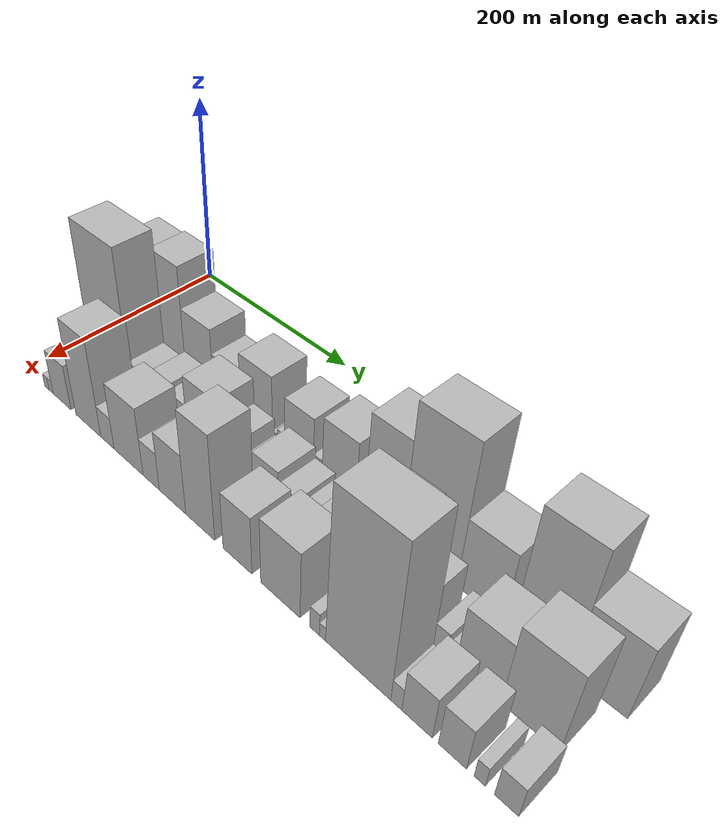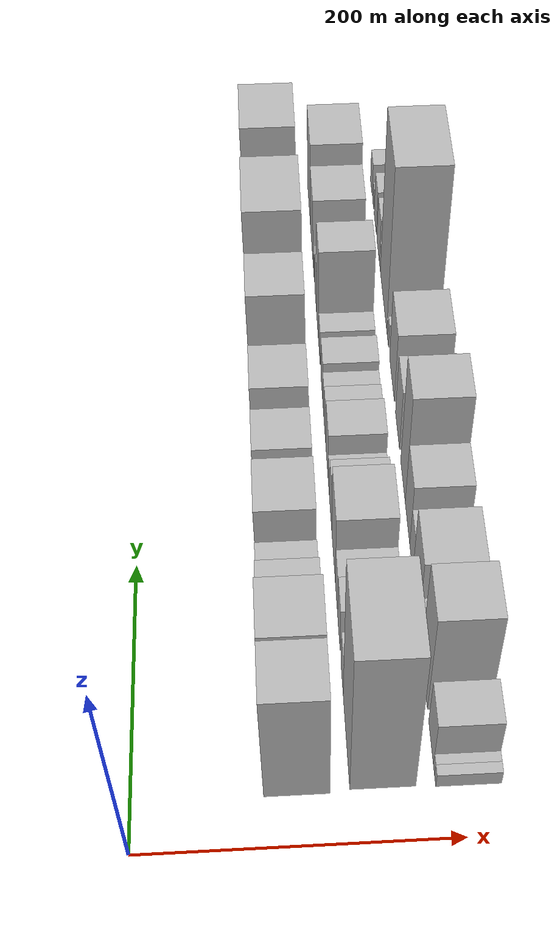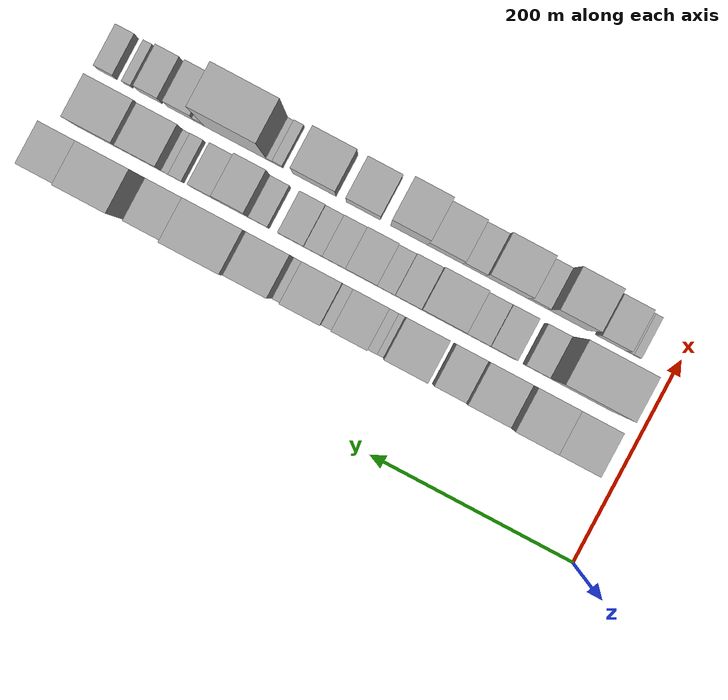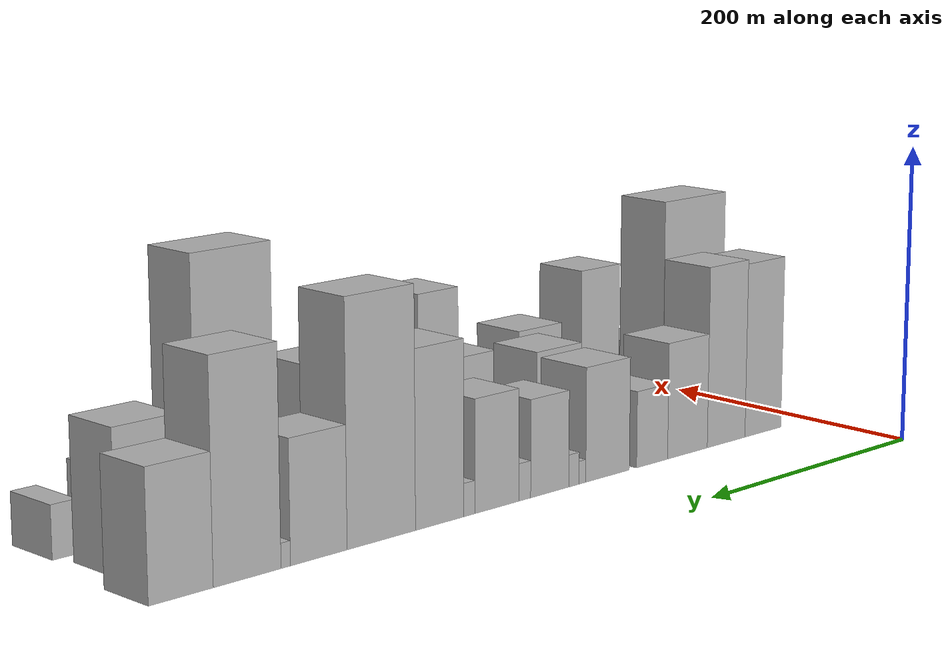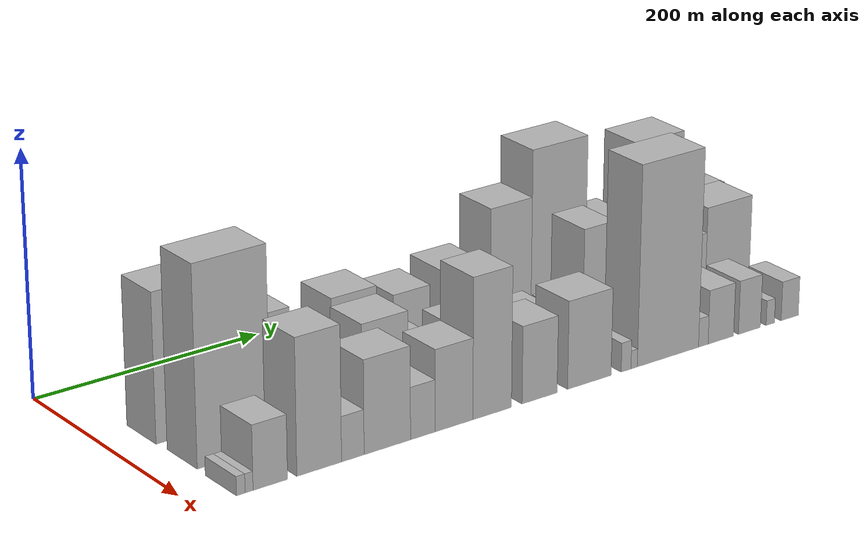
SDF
<sdf version="1.6">
 <world name="default">
  <model name="building_19">
   <static>1</static>
   <pose>100.0000 51.3344 0 0.000000 0.000000 0.000000</pose>
   <link name="link">
    <pose>0 0 60.00 0 0 0</pose>
    <collision name="collision"><geometry><box><size>40.0000 38.7485 120.0000</size></box></geometry></collision>
    <visual name="visual">
     <cast_shadows>0</cast_shadows>
     <geometry><box><size>40.0000 38.7485 120.0000</size></box></geometry>
     <material>
      <script>
       <uri>model://HANNAS_wall/materials/scripts</uri>
       <uri>model://HANNAS_wall/materials/textures</uri>
       <name>vrc/HANNAS_wall</name>
      </script>
     </material>
    </visual>
   </link>
  </model>
  <model name="building_20">
   <static>1</static>
   <pose>100.0000 90.4751 0 0.000000 0.000000 0.000000</pose>
   <link name="link">
    <pose>0 0 61.50 0 0 0</pose>
    <collision name="collision"><geometry><box><size>40.0000 39.5329 123.0000</size></box></geometry></collision>
    <visual name="visual">
     <cast_shadows>0</cast_shadows>
     <geometry><box><size>40.0000 39.5329 123.0000</size></box></geometry>
     <material>
      <script>
       <uri>model://HANNAS_wall/materials/scripts</uri>
       <uri>model://HANNAS_wall/materials/textures</uri>
       <name>vrc/HANNAS_wall</name>
      </script>
     </material>
    </visual>
   </link>
  </model>
  <model name="building_21">
   <static>1</static>
   <pose>100.0000 130.3828 0 0.000000 0.000000 0.000000</pose>
   <link name="link">
    <pose>0 0 39.00 0 0 0</pose>
    <collision name="collision"><geometry><box><size>40.0000 40.2824 78.0000</size></box></geometry></collision>
    <visual name="visual">
     <cast_shadows>0</cast_shadows>
     <geometry><box><size>40.0000 40.2824 78.0000</size></box></geometry>
     <material>
      <script>
       <uri>model://HANNAS_wall/materials/scripts</uri>
       <uri>model://HANNAS_wall/materials/textures</uri>
       <name>vrc/HANNAS_wall</name>
      </script>
     </material>
    </visual>
   </link>
  </model>
  <model name="building_22">
   <static>1</static>
   <pose>100.0000 165.8007 0 0.000000 0.000000 0.000000</pose>
   <link name="link">
    <pose>0 0 25.50 0 0 0</pose>
    <collision name="collision"><geometry><box><size>40.0000 30.5533 51.0000</size></box></geometry></collision>
    <visual name="visual">
     <cast_shadows>0</cast_shadows>
     <geometry><box><size>40.0000 30.5533 51.0000</size></box></geometry>
     <material>
      <script>
       <uri>model://HANNAS_wall/materials/scripts</uri>
       <uri>model://HANNAS_wall/materials/textures</uri>
       <name>vrc/HANNAS_wall</name>
      </script>
     </material>
    </visual>
   </link>
  </model>
  <model name="building_23">
   <static>1</static>
   <pose>100.0000 208.7580 0 0.000000 0.000000 0.000000</pose>
   <link name="link">
    <pose>0 0 37.50 0 0 0</pose>
    <collision name="collision"><geometry><box><size>40.0000 41.3613 75.0000</size></box></geometry></collision>
    <visual name="visual">
     <cast_shadows>0</cast_shadows>
     <geometry><box><size>40.0000 41.3613 75.0000</size></box></geometry>
     <material>
      <script>
       <uri>model://HANNAS_wall/materials/scripts</uri>
       <uri>model://HANNAS_wall/materials/textures</uri>
       <name>vrc/HANNAS_wall</name>
      </script>
     </material>
    </visual>
   </link>
  </model>
  <model name="building_24">
   <static>1</static>
   <pose>100.0000 232.5239 0 0.000000 0.000000 0.000000</pose>
   <link name="link">
    <pose>0 0 7.50 0 0 0</pose>
    <collision name="collision"><geometry><box><size>40.0000 6.1706 15.0000</size></box></geometry></collision>
    <visual name="visual">
     <cast_shadows>0</cast_shadows>
     <geometry><box><size>40.0000 6.1706 15.0000</size></box></geometry>
     <material>
      <script>
       <uri>model://HANNAS_wall/materials/scripts</uri>
       <uri>model://HANNAS_wall/materials/textures</uri>
       <name>vrc/HANNAS_wall</name>
      </script>
     </material>
    </visual>
   </link>
  </model>
  <model name="building_25">
   <static>1</static>
   <pose>100.0000 240.3950 0 0.000000 0.000000 0.000000</pose>
   <link name="link">
    <pose>0 0 10.50 0 0 0</pose>
    <collision name="collision"><geometry><box><size>40.0000 9.5717 21.0000</size></box></geometry></collision>
    <visual name="visual">
     <cast_shadows>0</cast_shadows>
     <geometry><box><size>40.0000 9.5717 21.0000</size></box></geometry>
     <material>
      <script>
       <uri>model://HANNAS_wall/materials/scripts</uri>
       <uri>model://HANNAS_wall/materials/textures</uri>
       <name>vrc/HANNAS_wall</name>
      </script>
     </material>
    </visual>
   </link>
  </model>
  <model name="building_26">
   <static>1</static>
   <pose>100.0000 262.4223 0 0.000000 0.000000 0.000000</pose>
   <link name="link">
    <pose>0 0 31.50 0 0 0</pose>
    <collision name="collision"><geometry><box><size>40.0000 34.4828 63.0000</size></box></geometry></collision>
    <visual name="visual">
     <cast_shadows>0</cast_shadows>
     <geometry><box><size>40.0000 34.4828 63.0000</size></box></geometry>
     <material>
      <script>
       <uri>model://HANNAS_wall/materials/scripts</uri>
       <uri>model://HANNAS_wall/materials/textures</uri>
       <name>vrc/HANNAS_wall</name>
      </script>
     </material>
    </visual>
   </link>
  </model>
  <model name="building_27">
   <static>1</static>
   <pose>100.0000 284.8369 0 0.000000 0.000000 0.000000</pose>
   <link name="link">
    <pose>0 0 12.00 0 0 0</pose>
    <collision name="collision"><geometry><box><size>40.0000 10.3464 24.0000</size></box></geometry></collision>
    <visual name="visual">
     <cast_shadows>0</cast_shadows>
     <geometry><box><size>40.0000 10.3464 24.0000</size></box></geometry>
     <material>
      <script>
       <uri>model://HANNAS_wall/materials/scripts</uri>
       <uri>model://HANNAS_wall/materials/textures</uri>
       <name>vrc/HANNAS_wall</name>
      </script>
     </material>
    </visual>
   </link>
  </model>
  <model name="building_28">
   <static>1</static>
   <pose>100.0000 309.1547 0 0.000000 0.000000 0.000000</pose>
   <link name="link">
    <pose>0 0 36.00 0 0 0</pose>
    <collision name="collision"><geometry><box><size>40.0000 38.2892 72.0000</size></box></geometry></collision>
    <visual name="visual">
     <cast_shadows>0</cast_shadows>
     <geometry><box><size>40.0000 38.2892 72.0000</size></box></geometry>
     <material>
      <script>
       <uri>model://HANNAS_wall/materials/scripts</uri>
       <uri>model://HANNAS_wall/materials/textures</uri>
       <name>vrc/HANNAS_wall</name>
      </script>
     </material>
    </visual>
   </link>
  </model>
  <model name="building_29">
   <static>1</static>
   <pose>100.0000 332.9960 0 0.000000 0.000000 0.000000</pose>
   <link name="link">
    <pose>0 0 10.50 0 0 0</pose>
    <collision name="collision"><geometry><box><size>40.0000 9.3933 21.0000</size></box></geometry></collision>
    <visual name="visual">
     <cast_shadows>0</cast_shadows>
     <geometry><box><size>40.0000 9.3933 21.0000</size></box></geometry>
     <material>
      <script>
       <uri>model://HANNAS_wall/materials/scripts</uri>
       <uri>model://HANNAS_wall/materials/textures</uri>
       <name>vrc/HANNAS_wall</name>
      </script>
     </material>
    </visual>
   </link>
  </model>
  <model name="building_30">
   <static>1</static>
   <pose>100.0000 357.7204 0 0.000000 0.000000 0.000000</pose>
   <link name="link">
    <pose>0 0 55.50 0 0 0</pose>
    <collision name="collision"><geometry><box><size>40.0000 40.0556 111.0000</size></box></geometry></collision>
    <visual name="visual">
     <cast_shadows>0</cast_shadows>
     <geometry><box><size>40.0000 40.0556 111.0000</size></box></geometry>
     <material>
      <script>
       <uri>model://HANNAS_wall/materials/scripts</uri>
       <uri>model://HANNAS_wall/materials/textures</uri>
       <name>vrc/HANNAS_wall</name>
      </script>
     </material>
    </visual>
   </link>
  </model>
  <model name="building_31">
   <static>1</static>
   <pose>100.0000 404.8930 0 0.000000 0.000000 0.000000</pose>
   <link name="link">
    <pose>0 0 75.00 0 0 0</pose>
    <collision name="collision"><geometry><box><size>40.0000 54.2895 150.0000</size></box></geometry></collision>
    <visual name="visual">
     <cast_shadows>0</cast_shadows>
     <geometry><box><size>40.0000 54.2895 150.0000</size></box></geometry>
     <material>
      <script>
       <uri>model://HANNAS_wall/materials/scripts</uri>
       <uri>model://HANNAS_wall/materials/textures</uri>
       <name>vrc/HANNAS_wall</name>
      </script>
     </material>
    </visual>
   </link>
  </model>
  <model name="building_32">
   <static>1</static>
   <pose>100.0000 453.5138 0 0.000000 0.000000 0.000000</pose>
   <link name="link">
    <pose>0 0 37.50 0 0 0</pose>
    <collision name="collision"><geometry><box><size>40.0000 42.9522 75.0000</size></box></geometry></collision>
    <visual name="visual">
     <cast_shadows>0</cast_shadows>
     <geometry><box><size>40.0000 42.9522 75.0000</size></box></geometry>
     <material>
      <script>
       <uri>model://HANNAS_wall/materials/scripts</uri>
       <uri>model://HANNAS_wall/materials/textures</uri>
       <name>vrc/HANNAS_wall</name>
      </script>
     </material>
    </visual>
   </link>
  </model>
  <model name="building_33">
   <static>1</static>
   <pose>100.0000 478.4617 0 0.000000 0.000000 0.000000</pose>
   <link name="link">
    <pose>0 0 7.50 0 0 0</pose>
    <collision name="collision"><geometry><box><size>40.0000 6.9436 15.0000</size></box></geometry></collision>
    <visual name="visual">
     <cast_shadows>0</cast_shadows>
     <geometry><box><size>40.0000 6.9436 15.0000</size></box></geometry>
     <material>
      <script>
       <uri>model://HANNAS_wall/materials/scripts</uri>
       <uri>model://HANNAS_wall/materials/textures</uri>
       <name>vrc/HANNAS_wall</name>
      </script>
     </material>
    </visual>
   </link>
  </model>
  <model name="building_34">
   <static>1</static>
   <pose>100.0000 506.3013 0 0.000000 0.000000 0.000000</pose>
   <link name="link">
    <pose>0 0 66.00 0 0 0</pose>
    <collision name="collision"><geometry><box><size>40.0000 48.7356 132.0000</size></box></geometry></collision>
    <visual name="visual">
     <cast_shadows>0</cast_shadows>
     <geometry><box><size>40.0000 48.7356 132.0000</size></box></geometry>
     <material>
      <script>
       <uri>model://HANNAS_wall/materials/scripts</uri>
       <uri>model://HANNAS_wall/materials/textures</uri>
       <name>vrc/HANNAS_wall</name>
      </script>
     </material>
    </visual>
   </link>
  </model>
  <model name="building_35">
   <static>1</static>
   <pose>100.0000 552.9983 0 0.000000 0.000000 0.000000</pose>
   <link name="link">
    <pose>0 0 39.00 0 0 0</pose>
    <collision name="collision"><geometry><box><size>40.0000 44.6583 78.0000</size></box></geometry></collision>
    <visual name="visual">
     <cast_shadows>0</cast_shadows>
     <geometry><box><size>40.0000 44.6583 78.0000</size></box></geometry>
     <material>
      <script>
       <uri>model://HANNAS_wall/materials/scripts</uri>
       <uri>model://HANNAS_wall/materials/textures</uri>
       <name>vrc/HANNAS_wall</name>
      </script>
     </material>
    </visual>
   </link>
  </model>
  <model name="building_55">
   <static>1</static>
   <pose>152.0000 65.2520 0 0.000000 0.000000 0.000000</pose>
   <link name="link">
    <pose>0 0 79.50 0 0 0</pose>
    <collision name="collision"><geometry><box><size>40.0000 62.8517 159.0000</size></box></geometry></collision>
    <visual name="visual">
     <cast_shadows>0</cast_shadows>
     <geometry><box><size>40.0000 62.8517 159.0000</size></box></geometry>
     <material>
      <script>
       <uri>model://HANNAS_wall/materials/scripts</uri>
       <uri>model://HANNAS_wall/materials/textures</uri>
       <name>vrc/HANNAS_wall</name>
      </script>
     </material>
    </visual>
   </link>
  </model>
  <model name="building_56">
   <static>1</static>
   <pose>152.0000 108.2803 0 0.000000 0.000000 0.000000</pose>
   <link name="link">
    <pose>0 0 19.50 0 0 0</pose>
    <collision name="collision"><geometry><box><size>40.0000 23.2048 39.0000</size></box></geometry></collision>
    <visual name="visual">
     <cast_shadows>0</cast_shadows>
     <geometry><box><size>40.0000 23.2048 39.0000</size></box></geometry>
     <material>
      <script>
       <uri>model://HANNAS_wall/materials/scripts</uri>
       <uri>model://HANNAS_wall/materials/textures</uri>
       <name>vrc/HANNAS_wall</name>
      </script>
     </material>
    </visual>
   </link>
  </model>
  <model name="building_57">
   <static>1</static>
   <pose>152.0000 141.6102 0 0.000000 0.000000 0.000000</pose>
   <link name="link">
    <pose>0 0 24.00 0 0 0</pose>
    <collision name="collision"><geometry><box><size>40.0000 25.4550 48.0000</size></box></geometry></collision>
    <visual name="visual">
     <cast_shadows>0</cast_shadows>
     <geometry><box><size>40.0000 25.4550 48.0000</size></box></geometry>
     <material>
      <script>
       <uri>model://HANNAS_wall/materials/scripts</uri>
       <uri>model://HANNAS_wall/materials/textures</uri>
       <name>vrc/HANNAS_wall</name>
      </script>
     </material>
    </visual>
   </link>
  </model>
  <model name="building_58">
   <static>1</static>
   <pose>152.0000 166.4611 0 0.000000 0.000000 0.000000</pose>
   <link name="link">
    <pose>0 0 21.00 0 0 0</pose>
    <collision name="collision"><geometry><box><size>40.0000 24.2469 42.0000</size></box></geometry></collision>
    <visual name="visual">
     <cast_shadows>0</cast_shadows>
     <geometry><box><size>40.0000 24.2469 42.0000</size></box></geometry>
     <material>
      <script>
       <uri>model://HANNAS_wall/materials/scripts</uri>
       <uri>model://HANNAS_wall/materials/textures</uri>
       <name>vrc/HANNAS_wall</name>
      </script>
     </material>
    </visual>
   </link>
  </model>
  <model name="building_59">
   <static>1</static>
   <pose>152.0000 199.6101 0 0.000000 0.000000 0.000000</pose>
   <link name="link">
    <pose>0 0 37.50 0 0 0</pose>
    <collision name="collision"><geometry><box><size>40.0000 42.0511 75.0000</size></box></geometry></collision>
    <visual name="visual">
     <cast_shadows>0</cast_shadows>
     <geometry><box><size>40.0000 42.0511 75.0000</size></box></geometry>
     <material>
      <script>
       <uri>model://HANNAS_wall/materials/scripts</uri>
       <uri>model://HANNAS_wall/materials/textures</uri>
       <name>vrc/HANNAS_wall</name>
      </script>
     </material>
    </visual>
   </link>
  </model>
  <model name="building_60">
   <static>1</static>
   <pose>152.0000 233.3329 0 0.000000 0.000000 0.000000</pose>
   <link name="link">
    <pose>0 0 24.00 0 0 0</pose>
    <collision name="collision"><geometry><box><size>40.0000 25.3945 48.0000</size></box></geometry></collision>
    <visual name="visual">
     <cast_shadows>0</cast_shadows>
     <geometry><box><size>40.0000 25.3945 48.0000</size></box></geometry>
     <material>
      <script>
       <uri>model://HANNAS_wall/materials/scripts</uri>
       <uri>model://HANNAS_wall/materials/textures</uri>
       <name>vrc/HANNAS_wall</name>
      </script>
     </material>
    </visual>
   </link>
  </model>
  <model name="building_61">
   <static>1</static>
   <pose>152.0000 254.6546 0 0.000000 0.000000 0.000000</pose>
   <link name="link">
    <pose>0 0 15.00 0 0 0</pose>
    <collision name="collision"><geometry><box><size>40.0000 17.2487 30.0000</size></box></geometry></collision>
    <visual name="visual">
     <cast_shadows>0</cast_shadows>
     <geometry><box><size>40.0000 17.2487 30.0000</size></box></geometry>
     <material>
      <script>
       <uri>model://HANNAS_wall/materials/scripts</uri>
       <uri>model://HANNAS_wall/materials/textures</uri>
       <name>vrc/HANNAS_wall</name>
      </script>
     </material>
    </visual>
   </link>
  </model>
  <model name="building_62">
   <static>1</static>
   <pose>152.0000 278.5262 0 0.000000 0.000000 0.000000</pose>
   <link name="link">
    <pose>0 0 25.50 0 0 0</pose>
    <collision name="collision"><geometry><box><size>40.0000 30.4945 51.0000</size></box></geometry></collision>
    <visual name="visual">
     <cast_shadows>0</cast_shadows>
     <geometry><box><size>40.0000 30.4945 51.0000</size></box></geometry>
     <material>
      <script>
       <uri>model://HANNAS_wall/materials/scripts</uri>
       <uri>model://HANNAS_wall/materials/textures</uri>
       <name>vrc/HANNAS_wall</name>
      </script>
     </material>
    </visual>
   </link>
  </model>
  <model name="building_63">
   <static>1</static>
   <pose>152.0000 305.0138 0 0.000000 0.000000 0.000000</pose>
   <link name="link">
    <pose>0 0 19.50 0 0 0</pose>
    <collision name="collision"><geometry><box><size>40.0000 22.4807 39.0000</size></box></geometry></collision>
    <visual name="visual">
     <cast_shadows>0</cast_shadows>
     <geometry><box><size>40.0000 22.4807 39.0000</size></box></geometry>
     <material>
      <script>
       <uri>model://HANNAS_wall/materials/scripts</uri>
       <uri>model://HANNAS_wall/materials/textures</uri>
       <name>vrc/HANNAS_wall</name>
      </script>
     </material>
    </visual>
   </link>
  </model>
  <model name="building_64">
   <static>1</static>
   <pose>152.0000 325.2323 0 0.000000 0.000000 0.000000</pose>
   <link name="link">
    <pose>0 0 16.50 0 0 0</pose>
    <collision name="collision"><geometry><box><size>40.0000 17.9563 33.0000</size></box></geometry></collision>
    <visual name="visual">
     <cast_shadows>0</cast_shadows>
     <geometry><box><size>40.0000 17.9563 33.0000</size></box></geometry>
     <material>
      <script>
       <uri>model://HANNAS_wall/materials/scripts</uri>
       <uri>model://HANNAS_wall/materials/textures</uri>
       <name>vrc/HANNAS_wall</name>
      </script>
     </material>
    </visual>
   </link>
  </model>
  <model name="building_65">
   <static>1</static>
   <pose>152.0000 346.6891 0 0.000000 0.000000 0.000000</pose>
   <link name="link">
    <pose>0 0 21.00 0 0 0</pose>
    <collision name="collision"><geometry><box><size>40.0000 24.9572 42.0000</size></box></geometry></collision>
    <visual name="visual">
     <cast_shadows>0</cast_shadows>
     <geometry><box><size>40.0000 24.9572 42.0000</size></box></geometry>
     <material>
      <script>
       <uri>model://HANNAS_wall/materials/scripts</uri>
       <uri>model://HANNAS_wall/materials/textures</uri>
       <name>vrc/HANNAS_wall</name>
      </script>
     </material>
    </visual>
   </link>
  </model>
  <model name="building_66">
   <static>1</static>
   <pose>152.0000 378.4294 0 0.000000 0.000000 0.000000</pose>
   <link name="link">
    <pose>0 0 18.00 0 0 0</pose>
    <collision name="collision"><geometry><box><size>40.0000 18.5234 36.0000</size></box></geometry></collision>
    <visual name="visual">
     <cast_shadows>0</cast_shadows>
     <geometry><box><size>40.0000 18.5234 36.0000</size></box></geometry>
     <material>
      <script>
       <uri>model://HANNAS_wall/materials/scripts</uri>
       <uri>model://HANNAS_wall/materials/textures</uri>
       <name>vrc/HANNAS_wall</name>
      </script>
     </material>
    </visual>
   </link>
  </model>
  <model name="building_67">
   <static>1</static>
   <pose>152.0000 402.7591 0 0.000000 0.000000 0.000000</pose>
   <link name="link">
    <pose>0 0 49.50 0 0 0</pose>
    <collision name="collision"><geometry><box><size>40.0000 30.1361 99.0000</size></box></geometry></collision>
    <visual name="visual">
     <cast_shadows>0</cast_shadows>
     <geometry><box><size>40.0000 30.1361 99.0000</size></box></geometry>
     <material>
      <script>
       <uri>model://HANNAS_wall/materials/scripts</uri>
       <uri>model://HANNAS_wall/materials/textures</uri>
       <name>vrc/HANNAS_wall</name>
      </script>
     </material>
    </visual>
   </link>
  </model>
  <model name="building_68">
   <static>1</static>
   <pose>152.0000 431.4727 0 0.000000 0.000000 0.000000</pose>
   <link name="link">
    <pose>0 0 24.00 0 0 0</pose>
    <collision name="collision"><geometry><box><size>40.0000 27.2912 48.0000</size></box></geometry></collision>
    <visual name="visual">
     <cast_shadows>0</cast_shadows>
     <geometry><box><size>40.0000 27.2912 48.0000</size></box></geometry>
     <material>
      <script>
       <uri>model://HANNAS_wall/materials/scripts</uri>
       <uri>model://HANNAS_wall/materials/textures</uri>
       <name>vrc/HANNAS_wall</name>
      </script>
     </material>
    </visual>
   </link>
  </model>
  <model name="building_69">
   <static>1</static>
   <pose>152.0000 459.5278 0 0.000000 0.000000 0.000000</pose>
   <link name="link">
    <pose>0 0 13.50 0 0 0</pose>
    <collision name="collision"><geometry><box><size>40.0000 12.8190 27.0000</size></box></geometry></collision>
    <visual name="visual">
     <cast_shadows>0</cast_shadows>
     <geometry><box><size>40.0000 12.8190 27.0000</size></box></geometry>
     <material>
      <script>
       <uri>model://HANNAS_wall/materials/scripts</uri>
       <uri>model://HANNAS_wall/materials/textures</uri>
       <name>vrc/HANNAS_wall</name>
      </script>
     </material>
    </visual>
   </link>
  </model>
  <model name="building_70">
   <static>1</static>
   <pose>152.0000 469.8214 0 0.000000 0.000000 0.000000</pose>
   <link name="link">
    <pose>0 0 9.00 0 0 0</pose>
    <collision name="collision"><geometry><box><size>40.0000 7.7683 18.0000</size></box></geometry></collision>
    <visual name="visual">
     <cast_shadows>0</cast_shadows>
     <geometry><box><size>40.0000 7.7683 18.0000</size></box></geometry>
     <material>
      <script>
       <uri>model://HANNAS_wall/materials/scripts</uri>
       <uri>model://HANNAS_wall/materials/textures</uri>
       <name>vrc/HANNAS_wall</name>
      </script>
     </material>
    </visual>
   </link>
  </model>
  <model name="building_71">
   <static>1</static>
   <pose>152.0000 492.9680 0 0.000000 0.000000 0.000000</pose>
   <link name="link">
    <pose>0 0 33.00 0 0 0</pose>
    <collision name="collision"><geometry><box><size>40.0000 38.5249 66.0000</size></box></geometry></collision>
    <visual name="visual">
     <cast_shadows>0</cast_shadows>
     <geometry><box><size>40.0000 38.5249 66.0000</size></box></geometry>
     <material>
      <script>
       <uri>model://HANNAS_wall/materials/scripts</uri>
       <uri>model://HANNAS_wall/materials/textures</uri>
       <name>vrc/HANNAS_wall</name>
      </script>
     </material>
    </visual>
   </link>
  </model>
  <model name="building_72">
   <static>1</static>
   <pose>152.0000 535.3781 0 0.000000 0.000000 0.000000</pose>
   <link name="link">
    <pose>0 0 43.50 0 0 0</pose>
    <collision name="collision"><geometry><box><size>40.0000 46.2954 87.0000</size></box></geometry></collision>
    <visual name="visual">
     <cast_shadows>0</cast_shadows>
     <geometry><box><size>40.0000 46.2954 87.0000</size></box></geometry>
     <material>
      <script>
       <uri>model://HANNAS_wall/materials/scripts</uri>
       <uri>model://HANNAS_wall/materials/textures</uri>
       <name>vrc/HANNAS_wall</name>
      </script>
     </material>
    </visual>
   </link>
  </model>
  <model name="building_90">
   <static>1</static>
   <pose>204.0000 36.5670 0 0.000000 0.000000 0.000000</pose>
   <link name="link">
    <pose>0 0 7.50 0 0 0</pose>
    <collision name="collision"><geometry><box><size>40.0000 7.2923 15.0000</size></box></geometry></collision>
    <visual name="visual">
     <cast_shadows>0</cast_shadows>
     <geometry><box><size>40.0000 7.2923 15.0000</size></box></geometry>
     <material>
      <script>
       <uri>model://HANNAS_wall/materials/scripts</uri>
       <uri>model://HANNAS_wall/materials/textures</uri>
       <name>vrc/HANNAS_wall</name>
      </script>
     </material>
    </visual>
   </link>
  </model>
  <model name="building_91">
   <static>1</static>
   <pose>204.0000 43.5936 0 0.000000 0.000000 0.000000</pose>
   <link name="link">
    <pose>0 0 7.50 0 0 0</pose>
    <collision name="collision"><geometry><box><size>40.0000 6.7609 15.0000</size></box></geometry></collision>
    <visual name="visual">
     <cast_shadows>0</cast_shadows>
     <geometry><box><size>40.0000 6.7609 15.0000</size></box></geometry>
     <material>
      <script>
       <uri>model://HANNAS_wall/materials/scripts</uri>
       <uri>model://HANNAS_wall/materials/textures</uri>
       <name>vrc/HANNAS_wall</name>
      </script>
     </material>
    </visual>
   </link>
  </model>
  <model name="building_92">
   <static>1</static>
   <pose>204.0000 61.6612 0 0.000000 0.000000 0.000000</pose>
   <link name="link">
    <pose>0 0 25.50 0 0 0</pose>
    <collision name="collision"><geometry><box><size>40.0000 29.3743 51.0000</size></box></geometry></collision>
    <visual name="visual">
     <cast_shadows>0</cast_shadows>
     <geometry><box><size>40.0000 29.3743 51.0000</size></box></geometry>
     <material>
      <script>
       <uri>model://HANNAS_wall/materials/scripts</uri>
       <uri>model://HANNAS_wall/materials/textures</uri>
       <name>vrc/HANNAS_wall</name>
      </script>
     </material>
    </visual>
   </link>
  </model>
  <model name="building_93">
   <static>1</static>
   <pose>204.0000 103.7845 0 0.000000 0.000000 0.000000</pose>
   <link name="link">
    <pose>0 0 54.00 0 0 0</pose>
    <collision name="collision"><geometry><box><size>40.0000 38.8723 108.0000</size></box></geometry></collision>
    <visual name="visual">
     <cast_shadows>0</cast_shadows>
     <geometry><box><size>40.0000 38.8723 108.0000</size></box></geometry>
     <material>
      <script>
       <uri>model://HANNAS_wall/materials/scripts</uri>
       <uri>model://HANNAS_wall/materials/textures</uri>
       <name>vrc/HANNAS_wall</name>
      </script>
     </material>
    </visual>
   </link>
  </model>
  <model name="building_94">
   <static>1</static>
   <pose>204.0000 133.1850 0 0.000000 0.000000 0.000000</pose>
   <link name="link">
    <pose>0 0 18.00 0 0 0</pose>
    <collision name="collision"><geometry><box><size>40.0000 19.9288 36.0000</size></box></geometry></collision>
    <visual name="visual">
     <cast_shadows>0</cast_shadows>
     <geometry><box><size>40.0000 19.9288 36.0000</size></box></geometry>
     <material>
      <script>
       <uri>model://HANNAS_wall/materials/scripts</uri>
       <uri>model://HANNAS_wall/materials/textures</uri>
       <name>vrc/HANNAS_wall</name>
      </script>
     </material>
    </visual>
   </link>
  </model>
  <model name="building_95">
   <static>1</static>
   <pose>204.0000 163.8841 0 0.000000 0.000000 0.000000</pose>
   <link name="link">
    <pose>0 0 37.50 0 0 0</pose>
    <collision name="collision"><geometry><box><size>40.0000 41.4694 75.0000</size></box></geometry></collision>
    <visual name="visual">
     <cast_shadows>0</cast_shadows>
     <geometry><box><size>40.0000 41.4694 75.0000</size></box></geometry>
     <material>
      <script>
       <uri>model://HANNAS_wall/materials/scripts</uri>
       <uri>model://HANNAS_wall/materials/textures</uri>
       <name>vrc/HANNAS_wall</name>
      </script>
     </material>
    </visual>
   </link>
  </model>
  <model name="building_96">
   <static>1</static>
   <pose>204.0000 195.7783 0 0.000000 0.000000 0.000000</pose>
   <link name="link">
    <pose>0 0 21.00 0 0 0</pose>
    <collision name="collision"><geometry><box><size>40.0000 22.3190 42.0000</size></box></geometry></collision>
    <visual name="visual">
     <cast_shadows>0</cast_shadows>
     <geometry><box><size>40.0000 22.3190 42.0000</size></box></geometry>
     <material>
      <script>
       <uri>model://HANNAS_wall/materials/scripts</uri>
       <uri>model://HANNAS_wall/materials/textures</uri>
       <name>vrc/HANNAS_wall</name>
      </script>
     </material>
    </visual>
   </link>
  </model>
  <model name="building_97">
   <static>1</static>
   <pose>204.0000 224.2615 0 0.000000 0.000000 0.000000</pose>
   <link name="link">
    <pose>0 0 33.00 0 0 0</pose>
    <collision name="collision"><geometry><box><size>40.0000 34.6474 66.0000</size></box></geometry></collision>
    <visual name="visual">
     <cast_shadows>0</cast_shadows>
     <geometry><box><size>40.0000 34.6474 66.0000</size></box></geometry>
     <material>
      <script>
       <uri>model://HANNAS_wall/materials/scripts</uri>
       <uri>model://HANNAS_wall/materials/textures</uri>
       <name>vrc/HANNAS_wall</name>
      </script>
     </material>
    </visual>
   </link>
  </model>
  <model name="building_98">
   <static>1</static>
   <pose>204.0000 259.6360 0 0.000000 0.000000 0.000000</pose>
   <link name="link">
    <pose>0 0 57.00 0 0 0</pose>
    <collision name="collision"><geometry><box><size>40.0000 36.1017 114.0000</size></box></geometry></collision>
    <visual name="visual">
     <cast_shadows>0</cast_shadows>
     <geometry><box><size>40.0000 36.1017 114.0000</size></box></geometry>
     <material>
      <script>
       <uri>model://HANNAS_wall/materials/scripts</uri>
       <uri>model://HANNAS_wall/materials/textures</uri>
       <name>vrc/HANNAS_wall</name>
      </script>
     </material>
    </visual>
   </link>
  </model>
  <model name="building_99">
   <static>1</static>
   <pose>204.0000 304.4165 0 0.000000 0.000000 0.000000</pose>
   <link name="link">
    <pose>0 0 31.50 0 0 0</pose>
    <collision name="collision"><geometry><box><size>40.0000 33.4593 63.0000</size></box></geometry></collision>
    <visual name="visual">
     <cast_shadows>0</cast_shadows>
     <geometry><box><size>40.0000 33.4593 63.0000</size></box></geometry>
     <material>
      <script>
       <uri>model://HANNAS_wall/materials/scripts</uri>
       <uri>model://HANNAS_wall/materials/textures</uri>
       <name>vrc/HANNAS_wall</name>
      </script>
     </material>
    </visual>
   </link>
  </model>
  <model name="building_100">
   <static>1</static>
   <pose>204.0000 352.3047 0 0.000000 0.000000 0.000000</pose>
   <link name="link">
    <pose>0 0 36.00 0 0 0</pose>
    <collision name="collision"><geometry><box><size>40.0000 42.3170 72.0000</size></box></geometry></collision>
    <visual name="visual">
     <cast_shadows>0</cast_shadows>
     <geometry><box><size>40.0000 42.3170 72.0000</size></box></geometry>
     <material>
      <script>
       <uri>model://HANNAS_wall/materials/scripts</uri>
       <uri>model://HANNAS_wall/materials/textures</uri>
       <name>vrc/HANNAS_wall</name>
      </script>
     </material>
    </visual>
   </link>
  </model>
  <model name="building_101">
   <static>1</static>
   <pose>204.0000 388.2981 0 0.000000 0.000000 0.000000</pose>
   <link name="link">
    <pose>0 0 12.00 0 0 0</pose>
    <collision name="collision"><geometry><box><size>40.0000 9.6699 24.0000</size></box></geometry></collision>
    <visual name="visual">
     <cast_shadows>0</cast_shadows>
     <geometry><box><size>40.0000 9.6699 24.0000</size></box></geometry>
     <material>
      <script>
       <uri>model://HANNAS_wall/materials/scripts</uri>
       <uri>model://HANNAS_wall/materials/textures</uri>
       <name>vrc/HANNAS_wall</name>
      </script>
     </material>
    </visual>
   </link>
  </model>
  <model name="building_102">
   <static>1</static>
   <pose>204.0000 396.2589 0 0.000000 0.000000 0.000000</pose>
   <link name="link">
    <pose>0 0 7.50 0 0 0</pose>
    <collision name="collision"><geometry><box><size>40.0000 6.2517 15.0000</size></box></geometry></collision>
    <visual name="visual">
     <cast_shadows>0</cast_shadows>
     <geometry><box><size>40.0000 6.2517 15.0000</size></box></geometry>
     <material>
      <script>
       <uri>model://HANNAS_wall/materials/scripts</uri>
       <uri>model://HANNAS_wall/materials/textures</uri>
       <name>vrc/HANNAS_wall</name>
      </script>
     </material>
    </visual>
   </link>
  </model>
  <model name="building_103">
   <static>1</static>
   <pose>204.0000 430.2011 0 0.000000 0.000000 0.000000</pose>
   <link name="link">
    <pose>0 0 82.50 0 0 0</pose>
    <collision name="collision"><geometry><box><size>40.0000 61.6327 165.0000</size></box></geometry></collision>
    <visual name="visual">
     <cast_shadows>0</cast_shadows>
     <geometry><box><size>40.0000 61.6327 165.0000</size></box></geometry>
     <material>
      <script>
       <uri>model://HANNAS_wall/materials/scripts</uri>
       <uri>model://HANNAS_wall/materials/textures</uri>
       <name>vrc/HANNAS_wall</name>
      </script>
     </material>
    </visual>
   </link>
  </model>
  <model name="building_104">
   <static>1</static>
   <pose>204.0000 465.9087 0 0.000000 0.000000 0.000000</pose>
   <link name="link">
    <pose>0 0 12.00 0 0 0</pose>
    <collision name="collision"><geometry><box><size>40.0000 9.7825 24.0000</size></box></geometry></collision>
    <visual name="visual">
     <cast_shadows>0</cast_shadows>
     <geometry><box><size>40.0000 9.7825 24.0000</size></box></geometry>
     <material>
      <script>
       <uri>model://HANNAS_wall/materials/scripts</uri>
       <uri>model://HANNAS_wall/materials/textures</uri>
       <name>vrc/HANNAS_wall</name>
      </script>
     </material>
    </visual>
   </link>
  </model>
  <model name="building_105">
   <static>1</static>
   <pose>204.0000 483.9118 0 0.000000 0.000000 0.000000</pose>
   <link name="link">
    <pose>0 0 22.50 0 0 0</pose>
    <collision name="collision"><geometry><box><size>40.0000 26.2237 45.0000</size></box></geometry></collision>
    <visual name="visual">
     <cast_shadows>0</cast_shadows>
     <geometry><box><size>40.0000 26.2237 45.0000</size></box></geometry>
     <material>
      <script>
       <uri>model://HANNAS_wall/materials/scripts</uri>
       <uri>model://HANNAS_wall/materials/textures</uri>
       <name>vrc/HANNAS_wall</name>
      </script>
     </material>
    </visual>
   </link>
  </model>
  <model name="building_106">
   <static>1</static>
   <pose>204.0000 513.4830 0 0.000000 0.000000 0.000000</pose>
   <link name="link">
    <pose>0 0 22.50 0 0 0</pose>
    <collision name="collision"><geometry><box><size>40.0000 22.9186 45.0000</size></box></geometry></collision>
    <visual name="visual">
     <cast_shadows>0</cast_shadows>
     <geometry><box><size>40.0000 22.9186 45.0000</size></box></geometry>
     <material>
      <script>
       <uri>model://HANNAS_wall/materials/scripts</uri>
       <uri>model://HANNAS_wall/materials/textures</uri>
       <name>vrc/HANNAS_wall</name>
      </script>
     </material>
    </visual>
   </link>
  </model>
  <model name="building_107">
   <static>1</static>
   <pose>204.0000 535.3321 0 0.000000 0.000000 0.000000</pose>
   <link name="link">
    <pose>0 0 10.50 0 0 0</pose>
    <collision name="collision"><geometry><box><size>40.0000 8.7797 21.0000</size></box></geometry></collision>
    <visual name="visual">
     <cast_shadows>0</cast_shadows>
     <geometry><box><size>40.0000 8.7797 21.0000</size></box></geometry>
     <material>
      <script>
       <uri>model://HANNAS_wall/materials/scripts</uri>
       <uri>model://HANNAS_wall/materials/textures</uri>
       <name>vrc/HANNAS_wall</name>
      </script>
     </material>
    </visual>
   </link>
  </model>
  <model name="building_108">
   <static>1</static>
   <pose>204.0000 555.8538 0 0.000000 0.000000 0.000000</pose>
   <link name="link">
    <pose>0 0 16.50 0 0 0</pose>
    <collision name="collision"><geometry><box><size>40.0000 18.2636 33.0000</size></box></geometry></collision>
    <visual name="visual">
     <cast_shadows>0</cast_shadows>
     <geometry><box><size>40.0000 18.2636 33.0000</size></box></geometry>
     <material>
      <script>
       <uri>model://HANNAS_wall/materials/scripts</uri>
       <uri>model://HANNAS_wall/materials/textures</uri>
       <name>vrc/HANNAS_wall</name>
      </script>
     </material>
    </visual>
   </link>
  </model>
 </world>
</sdf>
